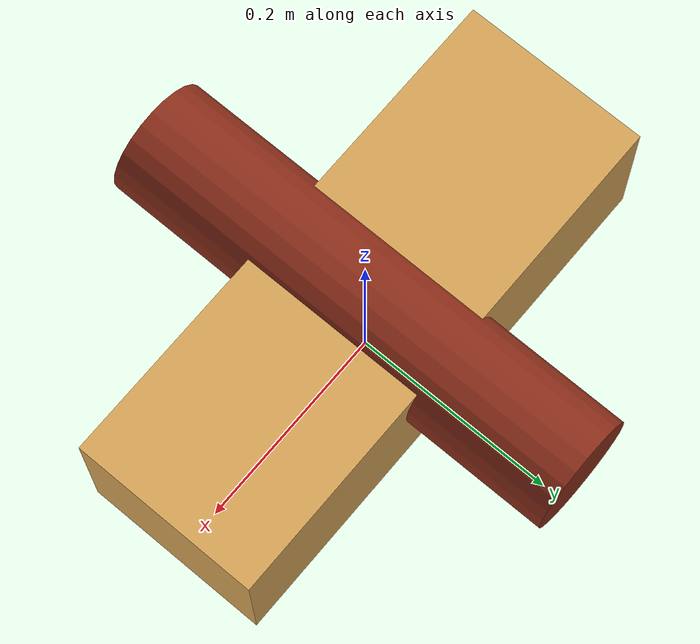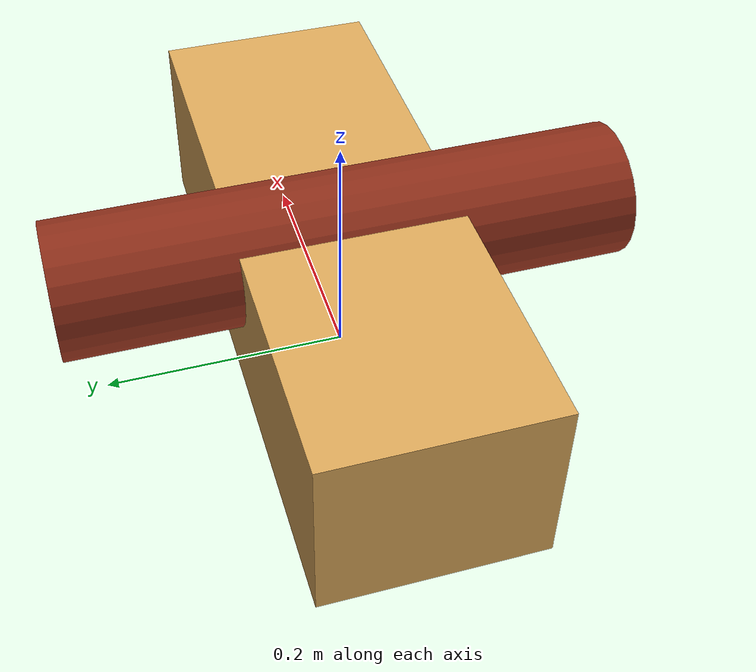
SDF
<?xml version="1.0" ?>
<sdf version="1.9">
  <model name="hot_dog">
    <static>true</static>
    <link name="link">

      <!-- bun (tan elongated box) -->
      <visual name="bun">
        <pose>0 0 0.075 0 0 0</pose>
        <geometry>
          <box><size>0.5 0.18 0.15</size></box>
        </geometry>
        <material>
          <ambient>0.85 0.65 0.35 1</ambient>
          <diffuse>0.85 0.65 0.35 1</diffuse>
        </material>
      </visual>
      <collision name="bun_col">
        <pose>0 0 0.075 0 0 0</pose>
        <geometry>
          <box><size>0.5 0.18 0.15</size></box>
        </geometry>
      </collision>

      <!-- sausage (reddish-brown cylinder) -->
      <visual name="sausage">
        <pose>0 0 0.115 1.5708 0 0</pose>
        <geometry>
          <cylinder>
            <radius>0.055</radius>
            <length>0.46</length>
          </cylinder>
        </geometry>
        <material>
          <ambient>0.55 0.18 0.10 1</ambient>
          <diffuse>0.55 0.18 0.10 1</diffuse>
        </material>
      </visual>
      <collision name="sausage_col">
        <pose>0 0 0.115 1.5708 0 0</pose>
        <geometry>
          <cylinder>
            <radius>0.055</radius>
            <length>0.46</length>
          </cylinder>
        </geometry>
      </collision>

    </link>
  </model>
</sdf>
